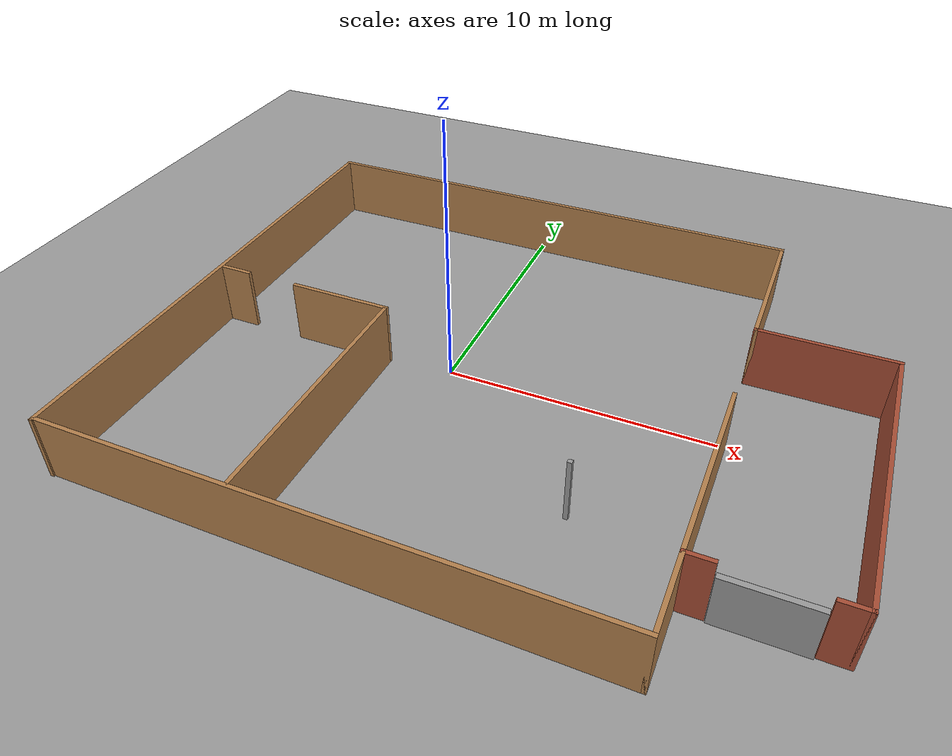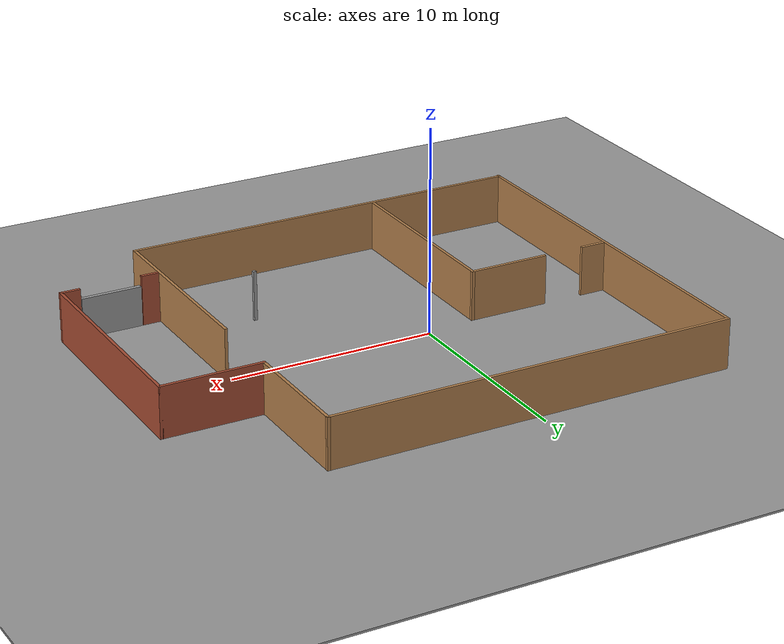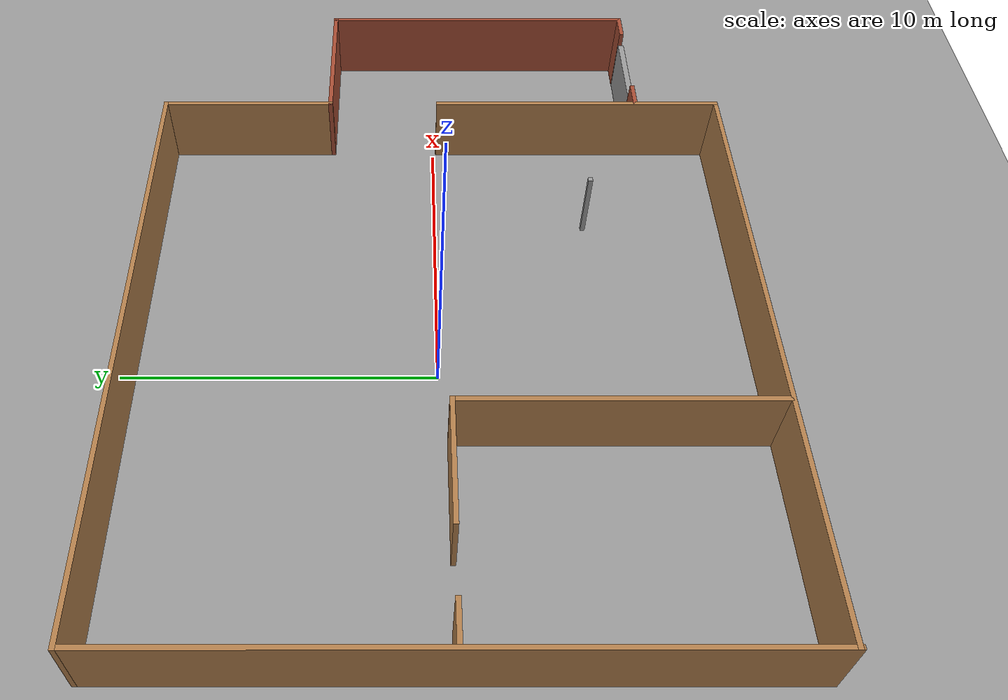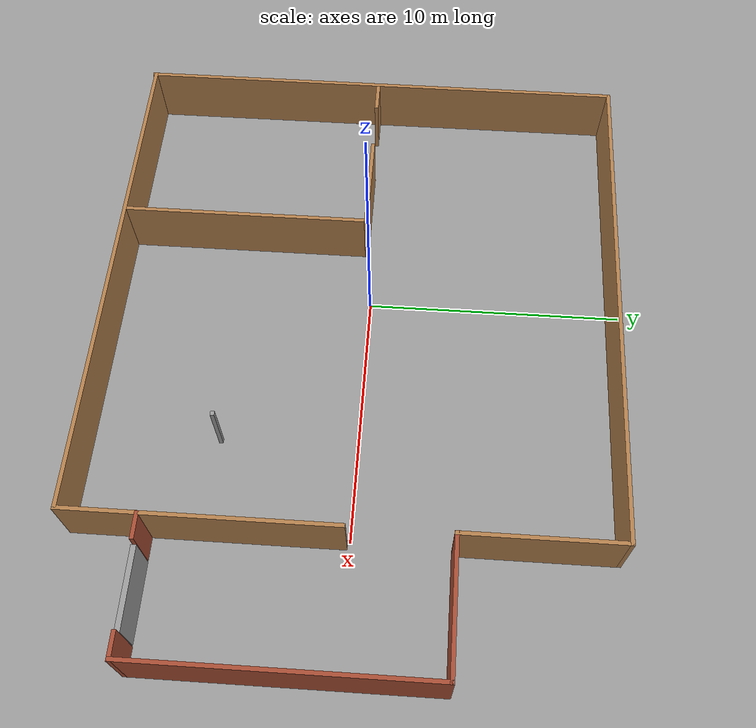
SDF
<sdf version="1.7">
 <world name="default">
  <light name="sun" type="directional">
   <pose>0 0 10 0 -0 0</pose>
   <diffuse>0.8 0.8 0.8 1</diffuse>
   <specular>0.2 0.2 0.2 1</specular>
   <attenuation>
    <range>1000</range>
    <constant>0.9</constant>
    <linear>0.01</linear>
    <quadratic>0.001</quadratic>
   </attenuation>
   <direction>-0.5 0.1 -0.9</direction>
   <spot><inner_angle>0</inner_angle><outer_angle>0</outer_angle><falloff>0</falloff></spot>
  </light>
  <model name="ground_plane">
   <static>1</static>
   <link name="link">
    <collision name="collision">
     <geometry><plane><normal>0 0 1</normal><size>100 100</size></plane></geometry>
     <surface>
      <contact><collide_bitmask>65535</collide_bitmask></contact>
      <friction><ode><mu>100</mu><mu2>50</mu2></ode></friction>
     </surface>
    </collision>
    <visual name="visual">
     <cast_shadows>0</cast_shadows>
     <geometry><plane><normal>0 0 1</normal><size>100 100</size></plane></geometry>
     <material>
      <script><uri>file://media/materials/scripts/gazebo.material</uri><name>Gazebo/Grey</name></script>
     </material>
    </visual>
   </link>
  </model>
  <gravity>0 0 -9.8</gravity>
  <magnetic_field>6e-06 2.3e-05 -4.2e-05</magnetic_field>
  <atmosphere type="adiabatic"/>
  <physics type="ode">
   <max_step_size>0.001</max_step_size>
   <real_time_factor>1</real_time_factor>
   <real_time_update_rate>1000</real_time_update_rate>
  </physics>
  <scene><ambient>0.4 0.4 0.4 1</ambient><background>0.7 0.7 0.7 1</background><shadows>1</shadows></scene>
  <spherical_coordinates>
   <surface_model>EARTH_WGS84</surface_model>
   <latitude_deg>0</latitude_deg>
   <longitude_deg>0</longitude_deg>
   <elevation>0</elevation>
   <heading_deg>0</heading_deg>
  </spherical_coordinates>
  <model name="industry">
   <pose>2.69835 -0.24363 0 0 -0 0</pose>
   <link name="Door_3">
    <collision name="Door_3_Collision">
     <geometry><box><size>2.93549 0.2 2</size></box></geometry>
     <pose>0 0 1 0 -0 0</pose>
    </collision>
    <visual name="Door_3_Visual">
     <pose>0 0 1 0 -0 0</pose>
     <geometry><box><size>2.93549 0.2 2</size></box></geometry>
     <material>
      <script><uri>file://media/materials/scripts/gazebo.material</uri><name>Gazebo/Grey</name></script>
     </material>
    </visual>
    <pose>9.92945 -6.93224 0 0 -0 0</pose>
   </link>
   <link name="Wall_12">
    <collision name="Wall_12_Collision">
     <geometry><box><size>20 0.15 2.5</size></box></geometry>
     <pose>0 0 1.25 0 -0 0</pose>
    </collision>
    <visual name="Wall_12_Visual">
     <pose>0 0 1.25 0 -0 0</pose>
     <geometry><box><size>20 0.15 2.5</size></box></geometry>
     <material>
      <script><uri>file://media/materials/scripts/gazebo.material</uri><name>Gazebo/Wood</name></script>
      <ambient>1 1 1 1</ambient>
     </material>
     <meta><layer>0</layer></meta>
    </visual>
    <pose>-2.425 -9.75 0 0 -0 0</pose>
   </link>
   <link name="Wall_14">
    <collision name="Wall_14_Collision">
     <geometry><box><size>10 0.15 2.5</size></box></geometry>
     <pose>0 0 1.25 0 -0 0</pose>
    </collision>
    <visual name="Wall_14_Visual">
     <pose>0 0 1.25 0 -0 0</pose>
     <geometry><box><size>10 0.15 2.5</size></box></geometry>
     <material>
      <script><uri>file://media/materials/scripts/gazebo.material</uri><name>Gazebo/Wood</name></script>
      <ambient>1 1 1 1</ambient>
     </material>
     <meta><layer>0</layer></meta>
    </visual>
    <pose>7.5 -4.825 0 0 -0 1.5708</pose>
   </link>
   <link name="Wall_16">
    <collision name="Wall_16_Collision">
     <geometry><box><size>6 0.15 2.5</size></box></geometry>
     <pose>0 0 1.25 0 -0 0</pose>
    </collision>
    <visual name="Wall_16_Visual">
     <pose>0 0 1.25 0 -0 0</pose>
     <geometry><box><size>6 0.15 2.5</size></box></geometry>
     <material>
      <script><uri>file://media/materials/scripts/gazebo.material</uri><name>Gazebo/Wood</name></script>
      <ambient>1 1 1 1</ambient>
     </material>
     <meta><layer>0</layer></meta>
    </visual>
    <pose>7.5 6.875 0 0 -0 1.5708</pose>
   </link>
   <link name="Wall_18">
    <collision name="Wall_18_Collision">
     <geometry><box><size>5 0.15 2.5</size></box></geometry>
     <pose>0 0 1.25 0 -0 0</pose>
    </collision>
    <visual name="Wall_18_Visual">
     <pose>0 0 1.25 0 -0 0</pose>
     <geometry><box><size>5 0.15 2.5</size></box></geometry>
     <material>
      <script><uri>file://media/materials/scripts/gazebo.material</uri><name>Gazebo/Bricks</name></script>
      <ambient>1 1 1 1</ambient>
     </material>
     <meta><layer>0</layer></meta>
    </visual>
    <pose>9.925 3.95 0 0 -0 0</pose>
   </link>
   <link name="Wall_19">
    <collision name="Wall_19_Collision">
     <geometry><box><size>11 0.15 2.5</size></box></geometry>
     <pose>0 0 1.25 0 -0 0</pose>
    </collision>
    <visual name="Wall_19_Visual">
     <pose>0 0 1.25 0 -0 0</pose>
     <geometry><box><size>11 0.15 2.5</size></box></geometry>
     <material>
      <script><uri>file://media/materials/scripts/gazebo.material</uri><name>Gazebo/Bricks</name></script>
      <ambient>1 1 1 1</ambient>
     </material>
     <meta><layer>0</layer></meta>
    </visual>
    <pose>12.35 -1.475 0 0 -0 -1.5708</pose>
   </link>
   <link name="Wall_27">
    <collision name="Wall_27_Collision">
     <geometry><box><size>20 0.15 2.5</size></box></geometry>
     <pose>0 0 1.25 0 -0 0</pose>
    </collision>
    <visual name="Wall_27_Visual">
     <pose>0 0 1.25 0 -0 0</pose>
     <geometry><box><size>20 0.15 2.5</size></box></geometry>
     <material>
      <script><uri>file://media/materials/scripts/gazebo.material</uri><name>Gazebo/Wood</name></script>
      <ambient>1 1 1 1</ambient>
     </material>
     <meta><layer>0</layer></meta>
    </visual>
    <pose>-2.425 9.8 0 0 -0 3.14159</pose>
   </link>
   <link name="Wall_28">
    <collision name="Wall_28_Collision">
     <geometry><box><size>19.75 0.15 2.5</size></box></geometry>
     <pose>0 0 1.25 0 -0 0</pose>
    </collision>
    <visual name="Wall_28_Visual">
     <pose>0 0 1.25 0 -0 0</pose>
     <geometry><box><size>19.75 0.15 2.5</size></box></geometry>
     <material>
      <script><uri>file://media/materials/scripts/gazebo.material</uri><name>Gazebo/Wood</name></script>
      <ambient>1 1 1 1</ambient>
     </material>
     <meta><layer>0</layer></meta>
    </visual>
    <pose>-12.35 -0 0 0 -0 -1.5708</pose>
   </link>
   <link name="Wall_40">
    <collision name="Wall_40_Collision">
     <geometry><box><size>0.16 0.15 2.5</size></box></geometry>
     <pose>0 0 1.25 0 -0 0</pose>
    </collision>
    <visual name="Wall_40_Visual">
     <pose>0 0 1.25 0 -0 0</pose>
     <geometry><box><size>0.16 0.15 2.5</size></box></geometry>
     <material>
      <script><uri>file://media/materials/scripts/gazebo.material</uri><name>Gazebo/Grey</name></script>
      <ambient>1 1 1 1</ambient>
     </material>
     <meta><layer>0</layer></meta>
    </visual>
    <pose>3.65449 -4.90417 0 0 -0 0</pose>
   </link>
   <link name="Wall_51">
    <collision name="Wall_51_Collision">
     <geometry><box><size>1 0.15 2.5</size></box></geometry>
     <pose>0 0 1.25 0 -0 0</pose>
    </collision>
    <visual name="Wall_51_Visual">
     <pose>0 0 1.25 0 -0 0</pose>
     <geometry><box><size>1 0.15 2.5</size></box></geometry>
     <material>
      <script><uri>file://media/materials/scripts/gazebo.material</uri><name>Gazebo/Bricks</name></script>
      <ambient>1 1 1 1</ambient>
     </material>
     <meta><layer>0</layer></meta>
    </visual>
    <pose>11.925 -6.9 0 0 -0 3.14159</pose>
   </link>
   <link name="Wall_53">
    <collision name="Wall_53_Collision">
     <geometry><box><size>1 0.15 2.5</size></box></geometry>
     <pose>0 0 1.25 0 -0 0</pose>
    </collision>
    <visual name="Wall_53_Visual">
     <pose>0 0 1.25 0 -0 0</pose>
     <geometry><box><size>1 0.15 2.5</size></box></geometry>
     <material>
      <script><uri>file://media/materials/scripts/gazebo.material</uri><name>Gazebo/Bricks</name></script>
      <ambient>1 1 1 1</ambient>
     </material>
     <meta><layer>0</layer></meta>
    </visual>
    <pose>7.9373 -6.9091 0 0 -0 0</pose>
   </link>
   <static>1</static>
  </model>
  <model name="ground_plane_0">
   <static>1</static>
   <link name="link">
    <collision name="collision">
     <geometry><plane><normal>0 0 1</normal><size>100 100</size></plane></geometry>
     <surface><friction><ode><mu>100</mu><mu2>50</mu2></ode></friction></surface>
    </collision>
    <visual name="visual">
     <cast_shadows>0</cast_shadows>
     <geometry><plane><normal>0 0 1</normal><size>100 100</size></plane></geometry>
     <material>
      <script><uri>file://media/materials/scripts/gazebo.material</uri><name>Gazebo/Grey</name></script>
     </material>
    </visual>
   </link>
   <pose>7.75706 0.97361 0 0 -0 0</pose>
  </model>
  <model name="custom">
   <pose>-4.7922 -4.99203 0 0 -0 0</pose>
   <link name="Wall_12">
    <collision name="Wall_12_Collision">
     <geometry><box><size>9.75 0.15 2.5</size></box></geometry>
     <pose>0 0 1.25 0 -0 0</pose>
    </collision>
    <visual name="Wall_12_Visual">
     <pose>0 0 1.25 0 -0 0</pose>
     <geometry><box><size>9.75 0.15 2.5</size></box></geometry>
     <material>
      <script><uri>file://media/materials/scripts/gazebo.material</uri><name>Gazebo/Wood</name></script>
      <ambient>1 1 1 1</ambient>
     </material>
     <meta><layer>0</layer></meta>
    </visual>
    <pose>2.36354 -0.117033 0 0 -0 1.5708</pose>
   </link>
   <link name="Wall_13">
    <collision name="Wall_13_Collision">
     <geometry><box><size>4 0.15 2.5</size></box></geometry>
     <pose>0 0 1.25 0 -0 0</pose>
    </collision>
    <visual name="Wall_13_Visual">
     <pose>0 0 1.25 0 -0 0</pose>
     <geometry><box><size>4 0.15 2.5</size></box></geometry>
     <material>
      <script><uri>file://media/materials/scripts/gazebo.material</uri><name>Gazebo/Wood</name></script>
      <ambient>1 1 1 1</ambient>
     </material>
     <meta><layer>0</layer></meta>
    </visual>
    <pose>0.438544 4.68297 0 0 -0 3.14159</pose>
   </link>
   <link name="Wall_17">
    <collision name="Wall_17_Collision">
     <geometry><box><size>1.25 0.15 2.5</size></box></geometry>
     <pose>0 0 1.25 0 -0 0</pose>
    </collision>
    <visual name="Wall_17_Visual">
     <pose>0 0 1.25 0 -0 0</pose>
     <geometry><box><size>1.25 0.15 2.5</size></box></geometry>
     <material>
      <script><uri>file://media/materials/scripts/gazebo.material</uri><name>Gazebo/Wood</name></script>
      <ambient>1 1 1 1</ambient>
     </material>
     <meta><layer>0</layer></meta>
    </visual>
    <pose>-4.1672 4.6847 0 0 -0 3.14159</pose>
   </link>
   <static>1</static>
  </model>
 </world>
</sdf>
